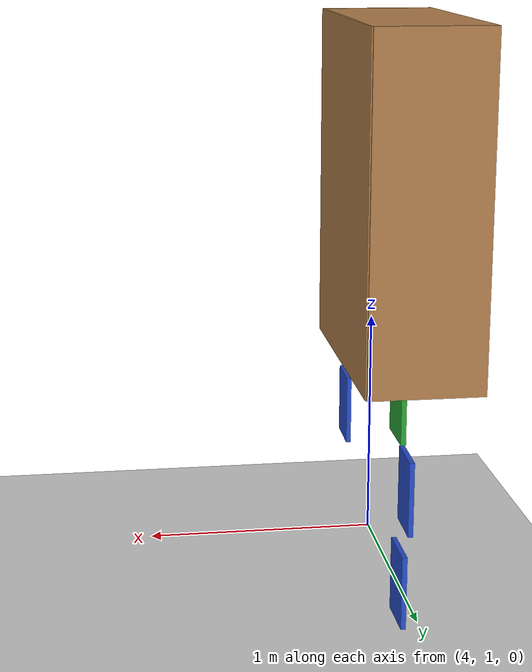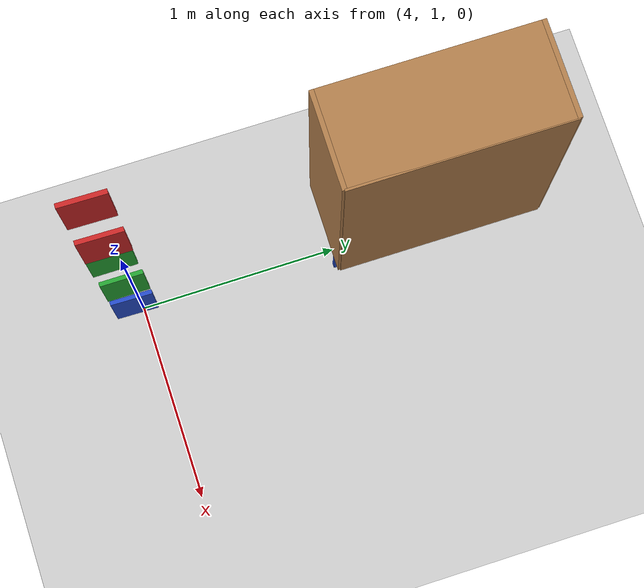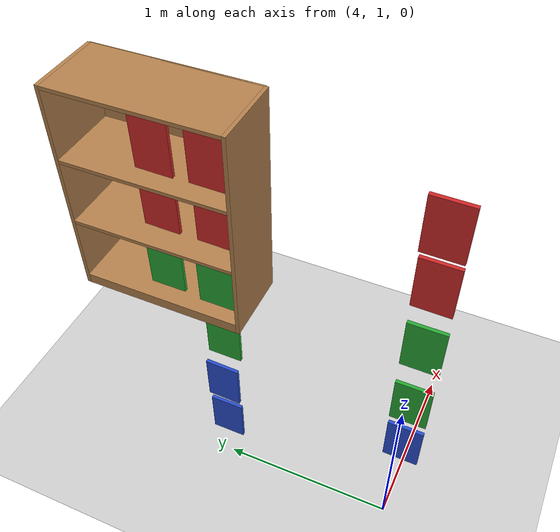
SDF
<sdf version="1.6">
 <world name="default">
  <model name="ground_plane">
   <static>1</static>
   <link name="link">
    <collision name="collision">
     <geometry><plane><normal>0 0 1</normal><size>100 100</size></plane></geometry>
     <surface><friction><ode><mu>100</mu><mu2>50</mu2></ode></friction></surface>
    </collision>
    <visual name="visual">
     <cast_shadows>0</cast_shadows>
     <geometry><plane><normal>0 0 1</normal><size>100 100</size></plane></geometry>
     <material>
      <script><uri>file://media/materials/scripts/gazebo.material</uri><name>Gazebo/Grey</name></script>
     </material>
    </visual>
   </link>
  </model>
  <model name="bookshelf_4_clone_1_clone">
   <static>1</static>
   <link name="link">
    <inertial><mass>1</mass></inertial>
    <collision name="back">
     <pose>0 0.005 0.6 0 -0 0</pose>
     <geometry><box><size>0.9 0.01 1.2</size></box></geometry>
    </collision>
    <visual name="visual1">
     <pose>0 0.005 0.6 0 -0 0</pose>
     <geometry><box><size>0.9 0.01 1.2</size></box></geometry>
     <material>
      <script><uri>file://media/materials/scripts/gazebo.material</uri><name>Gazebo/Wood</name></script>
     </material>
    </visual>
    <collision name="left_side">
     <pose>0.45 -0.195 0.6 0 -0 0</pose>
     <geometry><box><size>0.02 0.4 1.2</size></box></geometry>
    </collision>
    <visual name="visual2">
     <pose>0.45 -0.195 0.6 0 -0 0</pose>
     <geometry><box><size>0.02 0.4 1.2</size></box></geometry>
     <material>
      <script><uri>file://media/materials/scripts/gazebo.material</uri><name>Gazebo/Wood</name></script>
     </material>
    </visual>
    <collision name="right_side">
     <pose>-0.45 -0.195 0.6 0 -0 0</pose>
     <geometry><box><size>0.02 0.4 1.2</size></box></geometry>
    </collision>
    <visual name="visual3">
     <pose>-0.45 -0.195 0.6 0 -0 0</pose>
     <geometry><box><size>0.02 0.4 1.2</size></box></geometry>
     <material>
      <script><uri>file://media/materials/scripts/gazebo.material</uri><name>Gazebo/Wood</name></script>
     </material>
    </visual>
    <collision name="bottom">
     <pose>0 -0.195 0.03 0 -0 0</pose>
     <geometry><box><size>0.88 0.4 0.06</size></box></geometry>
    </collision>
    <visual name="visual4">
     <pose>0 -0.195 0.03 0 -0 0</pose>
     <geometry><box><size>0.88 0.4 0.06</size></box></geometry>
     <material>
      <script><uri>file://media/materials/scripts/gazebo.material</uri><name>Gazebo/Wood</name></script>
     </material>
    </visual>
    <collision name="top">
     <pose>0 -0.195 1.19 0 -0 0</pose>
     <geometry><box><size>0.88 0.4 0.02</size></box></geometry>
    </collision>
    <visual name="visual5">
     <pose>0 -0.195 1.19 0 -0 0</pose>
     <geometry><box><size>0.88 0.4 0.02</size></box></geometry>
     <material>
      <script><uri>file://media/materials/scripts/gazebo.material</uri><name>Gazebo/Wood</name></script>
     </material>
    </visual>
    <collision name="low_shelf">
     <pose>0 -0.195 0.43 0 -0 0</pose>
     <geometry><box><size>0.88 0.4 0.02</size></box></geometry>
    </collision>
    <visual name="visual6">
     <pose>0 -0.195 0.43 0 -0 0</pose>
     <geometry><box><size>0.88 0.4 0.02</size></box></geometry>
     <material>
      <script><uri>file://media/materials/scripts/gazebo.material</uri><name>Gazebo/Wood</name></script>
     </material>
    </visual>
    <collision name="high_shelf">
     <pose>0 -0.195 0.8 0 -0 0</pose>
     <geometry><box><size>0.88 0.4 0.02</size></box></geometry>
    </collision>
    <visual name="visual7">
     <pose>0 -0.195 0.8 0 -0 0</pose>
     <geometry><box><size>0.88 0.4 0.02</size></box></geometry>
     <material>
      <script><uri>file://media/materials/scripts/gazebo.material</uri><name>Gazebo/Wood</name></script>
     </material>
    </visual>
   </link>
   <pose>4.3806 2.34957 1.20741 0 0 -1.5727</pose>
  </model>
  <model name="bluecube_0_clone_clone_9_clone_11_clone_clone_2">
   <static>1</static>
   <link name="link">
    <pose>0 0 0.21 0 -0 0</pose>
    <collision name="collision"><geometry><box><size>0.2 0.02 0.3</size></box></geometry></collision>
    <visual name="visual">
     <geometry><box><size>0.2 0.02 0.3</size></box></geometry>
     <material>
      <script><uri>file://media/materials/scripts/gazebo.material</uri><name>Gazebo/Blue</name></script>
     </material>
    </visual>
   </link>
   <pose>4.09709 2.07284 0 0 -0 1.57146</pose>
  </model>
  <model name="bluecube_0_clone_clone_10_clone_clone_21_clone_clone_3">
   <static>1</static>
   <link name="link">
    <pose>0 0 0.21 0 -0 0</pose>
    <collision name="collision"><geometry><box><size>0.2 0.02 0.3</size></box></geometry></collision>
    <visual name="visual">
     <geometry><box><size>0.2 0.02 0.3</size></box></geometry>
     <material>
      <script><uri>file://media/materials/scripts/gazebo.material</uri><name>Gazebo/Blue</name></script>
     </material>
    </visual>
   </link>
   <pose>4.07464 2.06847 0.38097 0 -0 1.5507</pose>
  </model>
  <model name="bluecube_0_clone_clone_10_clone_clone_21_clone_clone_4">
   <static>1</static>
   <link name="link">
    <pose>0 0 0.21 0 -0 0</pose>
    <collision name="collision"><geometry><box><size>0.2 0.02 0.3</size></box></geometry></collision>
    <visual name="visual">
     <geometry><box><size>0.2 0.02 0.3</size></box></geometry>
     <material>
      <script><uri>file://media/materials/scripts/gazebo.material</uri><name>Gazebo/Blue</name></script>
     </material>
    </visual>
   </link>
   <pose>4.11089 0.983593 0.38097 0 -0 1.5507</pose>
  </model>
  <model name="greencube_clone_clone_22_clone_clone_3">
   <static>1</static>
   <link name="link">
    <pose>0 0 0.21 0 -0 0</pose>
    <collision name="collision"><geometry><box><size>0.2 0.02 0.3</size></box></geometry></collision>
    <visual name="visual">
     <geometry><box><size>0.2 0.02 0.3</size></box></geometry>
     <material>
      <script><uri>file://media/materials/scripts/gazebo.material</uri><name>Gazebo/Green</name></script>
     </material>
    </visual>
   </link>
   <pose>4.11127 2.06004 0.751098 0 -0 1.56837</pose>
  </model>
  <model name="greencube_clone_clone_22_clone_clone_4">
   <static>1</static>
   <link name="link">
    <pose>0 0 0.21 0 -0 0</pose>
    <collision name="collision"><geometry><box><size>0.2 0.02 0.3</size></box></geometry></collision>
    <visual name="visual">
     <geometry><box><size>0.2 0.02 0.3</size></box></geometry>
     <material>
      <script><uri>file://media/materials/scripts/gazebo.material</uri><name>Gazebo/Green</name></script>
     </material>
    </visual>
   </link>
   <pose>4.1067 0.983175 0.751098 0 -0 1.56837</pose>
  </model>
  <model name="greencube_clone_clone_22_clone_clone_10_clone_clone_clone_14">
   <static>1</static>
   <link name="link">
    <pose>0 0 0.21 0 -0 0</pose>
    <collision name="collision"><geometry><box><size>0.2 0.02 0.3</size></box></geometry></collision>
    <visual name="visual">
     <geometry><box><size>0.2 0.02 0.3</size></box></geometry>
     <material>
      <script><uri>file://media/materials/scripts/gazebo.material</uri><name>Gazebo/Green</name></script>
     </material>
    </visual>
   </link>
   <pose>4.09356 2.35239 1.21098 0 -0 1.56837</pose>
  </model>
  <model name="greencube_clone_clone_22_clone_clone_10_clone_clone_clone_15">
   <static>1</static>
   <link name="link">
    <pose>0 0 0.21 0 -0 0</pose>
    <collision name="collision"><geometry><box><size>0.2 0.02 0.3</size></box></geometry></collision>
    <visual name="visual">
     <geometry><box><size>0.2 0.02 0.3</size></box></geometry>
     <material>
      <script><uri>file://media/materials/scripts/gazebo.material</uri><name>Gazebo/Green</name></script>
     </material>
    </visual>
   </link>
   <pose>4.0773 2.05603 1.21098 0 -0 1.56837</pose>
  </model>
  <model name="greencube_clone_clone_22_clone_clone_10_clone_clone_clone_16">
   <static>1</static>
   <link name="link">
    <pose>0 0 0.21 0 -0 0</pose>
    <collision name="collision"><geometry><box><size>0.2 0.02 0.3</size></box></geometry></collision>
    <visual name="visual">
     <geometry><box><size>0.2 0.02 0.3</size></box></geometry>
     <material>
      <script><uri>file://media/materials/scripts/gazebo.material</uri><name>Gazebo/Green</name></script>
     </material>
    </visual>
   </link>
   <pose>4.10131 0.979456 1.21098 0 -0 1.56837</pose>
  </model>
  <model name="redcube_clone_clone_22_clone_clone_14">
   <static>1</static>
   <link name="link">
    <pose>0 0 0.21 0 -0 0</pose>
    <collision name="collision"><geometry><box><size>0.2 0.02 0.3</size></box></geometry></collision>
    <visual name="visual">
     <geometry><box><size>0.2 0.02 0.3</size></box></geometry>
     <material>
      <script><uri>file://media/materials/scripts/gazebo.material</uri><name>Gazebo/Red</name></script>
     </material>
    </visual>
   </link>
   <pose>4.12625 2.35805 1.58534 0 -0 1.55372</pose>
  </model>
  <model name="redcube_clone_clone_22_clone_clone_15">
   <static>1</static>
   <link name="link">
    <pose>0 0 0.21 0 -0 0</pose>
    <collision name="collision"><geometry><box><size>0.2 0.02 0.3</size></box></geometry></collision>
    <visual name="visual">
     <geometry><box><size>0.2 0.02 0.3</size></box></geometry>
     <material>
      <script><uri>file://media/materials/scripts/gazebo.material</uri><name>Gazebo/Red</name></script>
     </material>
    </visual>
   </link>
   <pose>4.1252 2.06217 1.58534 0 -0 1.55372</pose>
  </model>
  <model name="redcube_clone_clone_22_clone_clone_16">
   <static>1</static>
   <link name="link">
    <pose>0 0 0.21 0 -0 0</pose>
    <collision name="collision"><geometry><box><size>0.2 0.02 0.3</size></box></geometry></collision>
    <visual name="visual">
     <geometry><box><size>0.2 0.02 0.3</size></box></geometry>
     <material>
      <script><uri>file://media/materials/scripts/gazebo.material</uri><name>Gazebo/Red</name></script>
     </material>
    </visual>
   </link>
   <pose>4.14088 0.987635 1.58534 0 -0 1.55372</pose>
  </model>
  <model name="redcube_clone_clone_22_clone_clone_22_clone_clone_1">
   <static>1</static>
   <link name="link">
    <pose>0 0 0.21 0 -0 0</pose>
    <collision name="collision"><geometry><box><size>0.2 0.02 0.3</size></box></geometry></collision>
    <visual name="visual">
     <geometry><box><size>0.2 0.02 0.3</size></box></geometry>
     <material>
      <script><uri>file://media/materials/scripts/gazebo.material</uri><name>Gazebo/Red</name></script>
     </material>
    </visual>
   </link>
   <pose>4.09582 0.984418 1.95914 0 -0 1.55372</pose>
  </model>
  <model name="redcube_clone_clone_22_clone_clone_22_clone_clone_5">
   <static>1</static>
   <link name="link">
    <pose>0 0 0.21 0 -0 0</pose>
    <collision name="collision"><geometry><box><size>0.2 0.02 0.3</size></box></geometry></collision>
    <visual name="visual">
     <geometry><box><size>0.2 0.02 0.3</size></box></geometry>
     <material>
      <script><uri>file://media/materials/scripts/gazebo.material</uri><name>Gazebo/Red</name></script>
     </material>
    </visual>
   </link>
   <pose>4.09829 2.33647 1.95914 0 -0 1.55372</pose>
  </model>
  <model name="redcube_clone_clone_22_clone_clone_22_clone_clone_6">
   <static>1</static>
   <link name="link">
    <pose>0 0 0.21 0 -0 0</pose>
    <collision name="collision"><geometry><box><size>0.2 0.02 0.3</size></box></geometry></collision>
    <visual name="visual">
     <geometry><box><size>0.2 0.02 0.3</size></box></geometry>
     <material>
      <script><uri>file://media/materials/scripts/gazebo.material</uri><name>Gazebo/Red</name></script>
     </material>
    </visual>
   </link>
   <pose>4.10085 2.05677 1.95914 0 -0 1.55372</pose>
  </model>
 </world>
</sdf>
